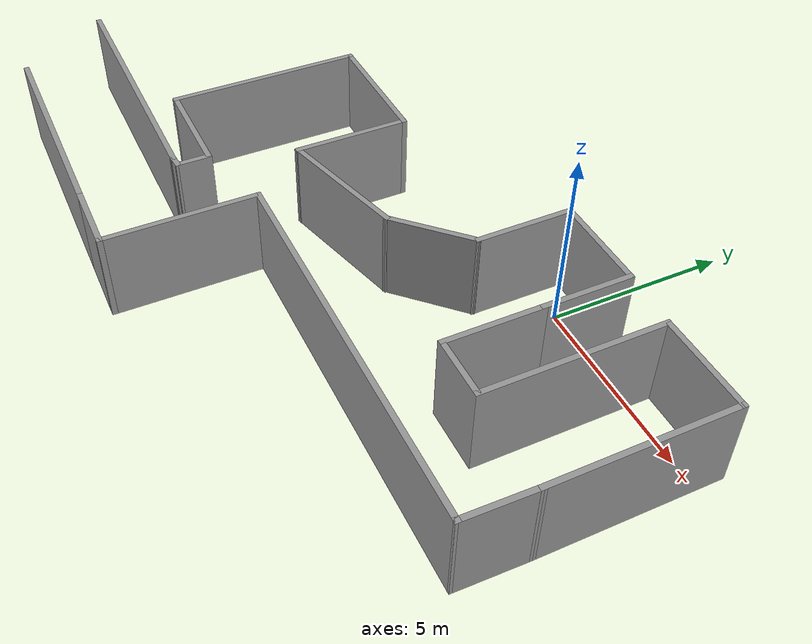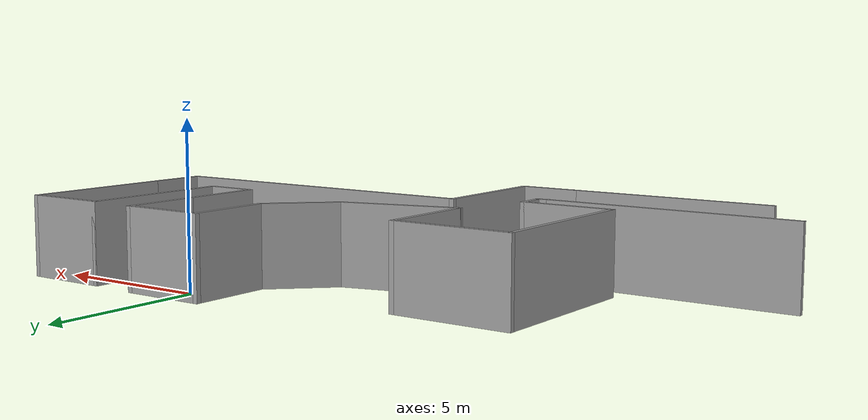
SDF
<?xml version='1.0'?>
<sdf version='1.7'>
  <model name='maze'>
    <pose>-4.55028 -4.65583 0 0 -0 0</pose>
    <link name='Wall_0'>
      <collision name='Wall_0_Collision'>
        <geometry>
          <box>
            <size>2.75 0.15 2.5</size>
          </box>
        </geometry>
        <pose>0 0 1.25 0 -0 0</pose>
      </collision>
      <visual name='Wall_0_Visual'>
        <pose>0 0 1.25 0 -0 0</pose>
        <geometry>
          <box>
            <size>2.75 0.15 2.5</size>
          </box>
        </geometry>
        <material>
          <script>
            <uri>file://media/materials/scripts/gazebo.material</uri>
            <name>Gazebo/Grey</name>
          </script>
          <ambient>1 1 1 1</ambient>
        </material>
        <meta>
          <layer>0</layer>
        </meta>
      </visual>
      <pose>3.49028 4.15583 0 0 -0 -1.5708</pose>
    </link>
    <link name='Wall_10'>
      <collision name='Wall_10_Collision'>
        <geometry>
          <box>
            <size>3.75 0.15 2.5</size>
          </box>
        </geometry>
        <pose>0 0 1.25 0 -0 0</pose>
      </collision>
      <visual name='Wall_10_Visual'>
        <pose>0 0 1.25 0 -0 0</pose>
        <geometry>
          <box>
            <size>3.75 0.15 2.5</size>
          </box>
        </geometry>
        <material>
          <script>
            <uri>file://media/materials/scripts/gazebo.material</uri>
            <name>Gazebo/Grey</name>
          </script>
          <ambient>1 1 1 1</ambient>
        </material>
        <meta>
          <layer>0</layer>
        </meta>
      </visual>
      <pose>0.089909 0.72825 0 0 -0 -2.87979</pose>
    </link>
    <link name='Wall_11'>
      <collision name='Wall_11_Collision'>
        <geometry>
          <box>
            <size>3.25 0.15 2.5</size>
          </box>
        </geometry>
        <pose>0 0 1.25 0 -0 0</pose>
      </collision>
      <visual name='Wall_11_Visual'>
        <pose>0 0 1.25 0 -0 0</pose>
        <geometry>
          <box>
            <size>3.25 0.15 2.5</size>
          </box>
        </geometry>
        <material>
          <script>
            <uri>file://media/materials/scripts/gazebo.material</uri>
            <name>Gazebo/Grey</name>
          </script>
          <ambient>1 1 1 1</ambient>
        </material>
        <meta>
          <layer>0</layer>
        </meta>
      </visual>
      <pose>-1.64876 1.81238 0 0 -0 1.5708</pose>
    </link>
    <link name='Wall_12'>
      <collision name='Wall_12_Collision'>
        <geometry>
          <box>
            <size>3.75 0.15 2.5</size>
          </box>
        </geometry>
        <pose>0 0 1.25 0 -0 0</pose>
      </collision>
      <visual name='Wall_12_Visual'>
        <pose>0 0 1.25 0 -0 0</pose>
        <geometry>
          <box>
            <size>3.75 0.15 2.5</size>
          </box>
        </geometry>
        <material>
          <script>
            <uri>file://media/materials/scripts/gazebo.material</uri>
            <name>Gazebo/Grey</name>
          </script>
          <ambient>1 1 1 1</ambient>
        </material>
        <meta>
          <layer>0</layer>
        </meta>
      </visual>
      <pose>-3.44876 3.36238 0 0 -0 3.14159</pose>
    </link>
    <link name='Wall_13'>
      <collision name='Wall_13_Collision'>
        <geometry>
          <box>
            <size>5.5 0.15 2.5</size>
          </box>
        </geometry>
        <pose>0 0 1.25 0 -0 0</pose>
      </collision>
      <visual name='Wall_13_Visual'>
        <pose>0 0 1.25 0 -0 0</pose>
        <geometry>
          <box>
            <size>5.5 0.15 2.5</size>
          </box>
        </geometry>
        <material>
          <script>
            <uri>file://media/materials/scripts/gazebo.material</uri>
            <name>Gazebo/Grey</name>
          </script>
          <ambient>1 1 1 1</ambient>
        </material>
        <meta>
          <layer>0</layer>
        </meta>
      </visual>
      <pose>-5.24876 0.687375 0 0 -0 -1.5708</pose>
    </link>
    <link name='Wall_14'>
      <collision name='Wall_14_Collision'>
        <geometry>
          <box>
            <size>3 0.15 2.5</size>
          </box>
        </geometry>
        <pose>0 0 1.25 0 -0 0</pose>
      </collision>
      <visual name='Wall_14_Visual'>
        <pose>0 0 1.25 0 -0 0</pose>
        <geometry>
          <box>
            <size>3 0.15 2.5</size>
          </box>
        </geometry>
        <material>
          <script>
            <uri>file://media/materials/scripts/gazebo.material</uri>
            <name>Gazebo/Grey</name>
          </script>
          <ambient>1 1 1 1</ambient>
        </material>
        <meta>
          <layer>0</layer>
        </meta>
      </visual>
      <pose>-3.82376 -1.98762 0 0 -0 0</pose>
    </link>
    <link name='Wall_15'>
      <collision name='Wall_15_Collision'>
        <geometry>
          <box>
            <size>1 0.15 2.5</size>
          </box>
        </geometry>
        <pose>0 0 1.25 0 -0 0</pose>
      </collision>
      <visual name='Wall_15_Visual'>
        <pose>0 0 1.25 0 -0 0</pose>
        <geometry>
          <box>
            <size>1 0.15 2.5</size>
          </box>
        </geometry>
        <material>
          <script>
            <uri>file://media/materials/scripts/gazebo.material</uri>
            <name>Gazebo/Grey</name>
          </script>
          <ambient>1 1 1 1</ambient>
        </material>
        <meta>
          <layer>0</layer>
        </meta>
      </visual>
      <pose>-2.39876 -2.41262 0 0 -0 -1.5708</pose>
    </link>
    <link name='Wall_17'>
      <collision name='Wall_17_Collision'>
        <geometry>
          <box>
            <size>2.75 0.15 2.5</size>
          </box>
        </geometry>
        <pose>0 0 1.25 0 -0 0</pose>
      </collision>
      <visual name='Wall_17_Visual'>
        <pose>0 0 1.25 0 -0 0</pose>
        <geometry>
          <box>
            <size>2.75 0.15 2.5</size>
          </box>
        </geometry>
        <material>
          <script>
            <uri>file://media/materials/scripts/gazebo.material</uri>
            <name>Gazebo/Grey</name>
          </script>
          <ambient>1 1 1 1</ambient>
        </material>
        <meta>
          <layer>0</layer>
        </meta>
      </visual>
      <pose>8.99028 5.35583 0 0 -0 0</pose>
    </link>
    <link name='Wall_18'>
      <collision name='Wall_18_Collision'>
        <geometry>
          <box>
            <size>5 0.15 2.5</size>
          </box>
        </geometry>
        <pose>0 0 1.25 0 -0 0</pose>
      </collision>
      <visual name='Wall_18_Visual'>
        <pose>0 0 1.25 0 -0 0</pose>
        <geometry>
          <box>
            <size>5 0.15 2.5</size>
          </box>
        </geometry>
        <material>
          <script>
            <uri>file://media/materials/scripts/gazebo.material</uri>
            <name>Gazebo/Grey</name>
          </script>
          <ambient>1 1 1 1</ambient>
        </material>
        <meta>
          <layer>0</layer>
        </meta>
      </visual>
      <pose>10.2903 2.93083 0 0 -0 -1.5708</pose>
    </link>
    <link name='Wall_20'>
      <collision name='Wall_20_Collision'>
        <geometry>
          <box>
            <size>4.25 0.15 2.5</size>
          </box>
        </geometry>
        <pose>0 0 1.25 0 -0 0</pose>
      </collision>
      <visual name='Wall_20_Visual'>
        <pose>0 0 1.25 0 -0 0</pose>
        <geometry>
          <box>
            <size>4.25 0.15 2.5</size>
          </box>
        </geometry>
        <material>
          <script>
            <uri>file://media/materials/scripts/gazebo.material</uri>
            <name>Gazebo/Grey</name>
          </script>
          <ambient>1 1 1 1</ambient>
        </material>
        <meta>
          <layer>0</layer>
        </meta>
      </visual>
      <pose>-0.351099 -3.40583 0 0 -0 -1.5708</pose>
    </link>
    <link name='Wall_21'>
      <collision name='Wall_21_Collision'>
        <geometry>
          <box>
            <size>2 0.15 2.5</size>
          </box>
        </geometry>
        <pose>0 0 1.25 0 -0 0</pose>
      </collision>
      <visual name='Wall_21_Visual'>
        <pose>0 0 1.25 0 -0 0</pose>
        <geometry>
          <box>
            <size>2 0.15 2.5</size>
          </box>
        </geometry>
        <material>
          <script>
            <uri>file://media/materials/scripts/gazebo.material</uri>
            <name>Gazebo/Grey</name>
          </script>
          <ambient>1 1 1 1</ambient>
        </material>
        <meta>
          <layer>0</layer>
        </meta>
      </visual>
      <pose>-1.2761 -5.45582 0 0 -0 3.14159</pose>
    </link>
    <link name='Wall_22'>
      <collision name='Wall_22_Collision'>
        <geometry>
          <box>
            <size>6.5 0.15 2.5</size>
          </box>
        </geometry>
        <pose>0 0 1.25 0 -0 0</pose>
      </collision>
      <visual name='Wall_22_Visual'>
        <pose>0 0 1.25 0 -0 0</pose>
        <geometry>
          <box>
            <size>6.5 0.15 2.5</size>
          </box>
        </geometry>
        <material>
          <script>
            <uri>file://media/materials/scripts/gazebo.material</uri>
            <name>Gazebo/Grey</name>
          </script>
          <ambient>1 1 1 1</ambient>
        </material>
        <meta>
          <layer>0</layer>
        </meta>
      </visual>
      <pose>-5.3761 -5.45582 0 0 -0 3.14159</pose>
    </link>
    <link name='Wall_24'>
      <collision name='Wall_24_Collision'>
        <geometry>
          <box>
            <size>7.75 0.15 2.5</size>
          </box>
        </geometry>
        <pose>0 0 1.25 0 -0 0</pose>
      </collision>
      <visual name='Wall_24_Visual'>
        <pose>0 0 1.25 0 -0 0</pose>
        <geometry>
          <box>
            <size>7.75 0.15 2.5</size>
          </box>
        </geometry>
        <material>
          <script>
            <uri>file://media/materials/scripts/gazebo.material</uri>
            <name>Gazebo/Grey</name>
          </script>
          <ambient>1 1 1 1</ambient>
        </material>
        <meta>
          <layer>0</layer>
        </meta>
      </visual>
      <pose>-6.49192 -2.86348 0 0 -0 3.14159</pose>
    </link>
    <link name='Wall_26'>
      <collision name='Wall_26_Collision'>
        <geometry>
          <box>
            <size>0.444304 0.15 2.5</size>
          </box>
        </geometry>
        <pose>0 0 1.25 0 -0 0</pose>
      </collision>
      <visual name='Wall_26_Visual'>
        <pose>0 0 1.25 0 -0 0</pose>
        <geometry>
          <box>
            <size>0.444304 0.15 2.5</size>
          </box>
        </geometry>
        <material>
          <script>
            <uri>file://media/materials/scripts/gazebo.material</uri>
            <name>Gazebo/Grey</name>
          </script>
          <ambient>1 1 1 1</ambient>
        </material>
        <meta>
          <layer>0</layer>
        </meta>
      </visual>
      <pose>-2.54534 -2.85055 0 0 -0 0.08795</pose>
    </link>
    <link name='Wall_28'>
      <collision name='Wall_28_Collision'>
        <geometry>
          <box>
            <size>10.75 0.15 2.5</size>
          </box>
        </geometry>
        <pose>0 0 1.25 0 -0 0</pose>
      </collision>
      <visual name='Wall_28_Visual'>
        <pose>0 0 1.25 0 -0 0</pose>
        <geometry>
          <box>
            <size>10.75 0.15 2.5</size>
          </box>
        </geometry>
        <material>
          <script>
            <uri>file://media/materials/scripts/gazebo.material</uri>
            <name>Gazebo/Grey</name>
          </script>
          <ambient>1 1 1 1</ambient>
        </material>
        <meta>
          <layer>0</layer>
        </meta>
      </visual>
      <pose>4.9489 -1.35583 0 0 -0 0</pose>
    </link>
    <link name='Wall_29'>
      <collision name='Wall_29_Collision'>
        <geometry>
          <box>
            <size>2.01211 0.15 2.5</size>
          </box>
        </geometry>
        <pose>0 0 1.25 0 -0 0</pose>
      </collision>
      <visual name='Wall_29_Visual'>
        <pose>0 0 1.25 0 -0 0</pose>
        <geometry>
          <box>
            <size>2.01211 0.15 2.5</size>
          </box>
        </geometry>
        <material>
          <script>
            <uri>file://media/materials/scripts/gazebo.material</uri>
            <name>Gazebo/Grey</name>
          </script>
          <ambient>1 1 1 1</ambient>
        </material>
        <meta>
          <layer>0</layer>
        </meta>
      </visual>
      <pose>10.2696 -0.425 0 0 -0 1.54858</pose>
    </link>
    <link name='Wall_3'>
      <collision name='Wall_3_Collision'>
        <geometry>
          <box>
            <size>2.75 0.15 2.5</size>
          </box>
        </geometry>
        <pose>0 0 1.25 0 -0 0</pose>
      </collision>
      <visual name='Wall_3_Visual'>
        <pose>0 0 1.25 0 -0 0</pose>
        <geometry>
          <box>
            <size>2.75 0.15 2.5</size>
          </box>
        </geometry>
        <material>
          <script>
            <uri>file://media/materials/scripts/gazebo.material</uri>
            <name>Gazebo/Grey</name>
          </script>
          <ambient>1 1 1 1</ambient>
        </material>
        <meta>
          <layer>0</layer>
        </meta>
      </visual>
      <pose>4.79028 5.45582 0 0 -0 0</pose>
    </link>
    <link name='Wall_4'>
      <collision name='Wall_4_Collision'>
        <geometry>
          <box>
            <size>2.5 0.15 2.5</size>
          </box>
        </geometry>
        <pose>0 0 1.25 0 -0 0</pose>
      </collision>
      <visual name='Wall_4_Visual'>
        <pose>0 0 1.25 0 -0 0</pose>
        <geometry>
          <box>
            <size>2.5 0.15 2.5</size>
          </box>
        </geometry>
        <material>
          <script>
            <uri>file://media/materials/scripts/gazebo.material</uri>
            <name>Gazebo/Grey</name>
          </script>
          <ambient>1 1 1 1</ambient>
        </material>
        <meta>
          <layer>0</layer>
        </meta>
      </visual>
      <pose>6.09028 4.28083 0 0 -0 -1.5708</pose>
    </link>
    <link name='Wall_5'>
      <collision name='Wall_5_Collision'>
        <geometry>
          <box>
            <size>2.75 0.15 2.5</size>
          </box>
        </geometry>
        <pose>0 0 1.25 0 -0 0</pose>
      </collision>
      <visual name='Wall_5_Visual'>
        <pose>0 0 1.25 0 -0 0</pose>
        <geometry>
          <box>
            <size>2.75 0.15 2.5</size>
          </box>
        </geometry>
        <material>
          <script>
            <uri>file://media/materials/scripts/gazebo.material</uri>
            <name>Gazebo/Grey</name>
          </script>
          <ambient>1 1 1 1</ambient>
        </material>
        <meta>
          <layer>0</layer>
        </meta>
      </visual>
      <pose>6.09028 1.80583 0 0 -0 -1.5708</pose>
    </link>
    <link name='Wall_6'>
      <collision name='Wall_6_Collision'>
        <geometry>
          <box>
            <size>1.75 0.15 2.5</size>
          </box>
        </geometry>
        <pose>0 0 1.25 0 -0 0</pose>
      </collision>
      <visual name='Wall_6_Visual'>
        <pose>0 0 1.25 0 -0 0</pose>
        <geometry>
          <box>
            <size>1.75 0.15 2.5</size>
          </box>
        </geometry>
        <material>
          <script>
            <uri>file://media/materials/scripts/gazebo.material</uri>
            <name>Gazebo/Grey</name>
          </script>
          <ambient>1 1 1 1</ambient>
        </material>
        <meta>
          <layer>0</layer>
        </meta>
      </visual>
      <pose>6.89028 0.505825 0 0 -0 0</pose>
    </link>
    <link name='Wall_7'>
      <collision name='Wall_7_Collision'>
        <geometry>
          <box>
            <size>5 0.15 2.5</size>
          </box>
        </geometry>
        <pose>0 0 1.25 0 -0 0</pose>
      </collision>
      <visual name='Wall_7_Visual'>
        <pose>0 0 1.25 0 -0 0</pose>
        <geometry>
          <box>
            <size>5 0.15 2.5</size>
          </box>
        </geometry>
        <material>
          <script>
            <uri>file://media/materials/scripts/gazebo.material</uri>
            <name>Gazebo/Grey</name>
          </script>
          <ambient>1 1 1 1</ambient>
        </material>
        <meta>
          <layer>0</layer>
        </meta>
      </visual>
      <pose>7.69028 2.93083 0 0 -0 1.5708</pose>
    </link>
    <link name='Wall_9'>
      <collision name='Wall_9_Collision'>
        <geometry>
          <box>
            <size>2.5 0.15 2.5</size>
          </box>
        </geometry>
        <pose>0 0 1.25 0 -0 0</pose>
      </collision>
      <visual name='Wall_9_Visual'>
        <pose>0 0 1.25 0 -0 0</pose>
        <geometry>
          <box>
            <size>2.5 0.15 2.5</size>
          </box>
        </geometry>
        <material>
          <script>
            <uri>file://media/materials/scripts/gazebo.material</uri>
            <name>Gazebo/Grey</name>
          </script>
          <ambient>1 1 1 1</ambient>
        </material>
        <meta>
          <layer>0</layer>
        </meta>
      </visual>
      <pose>2.65943 2.02497 0 0 -0 -2.35619</pose>
    </link>
    <static>1</static>
  </model>
</sdf>
